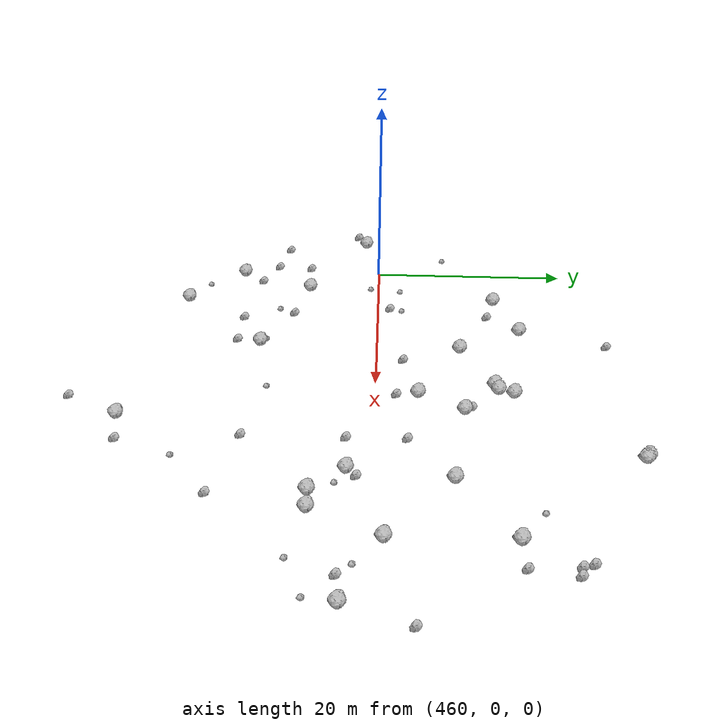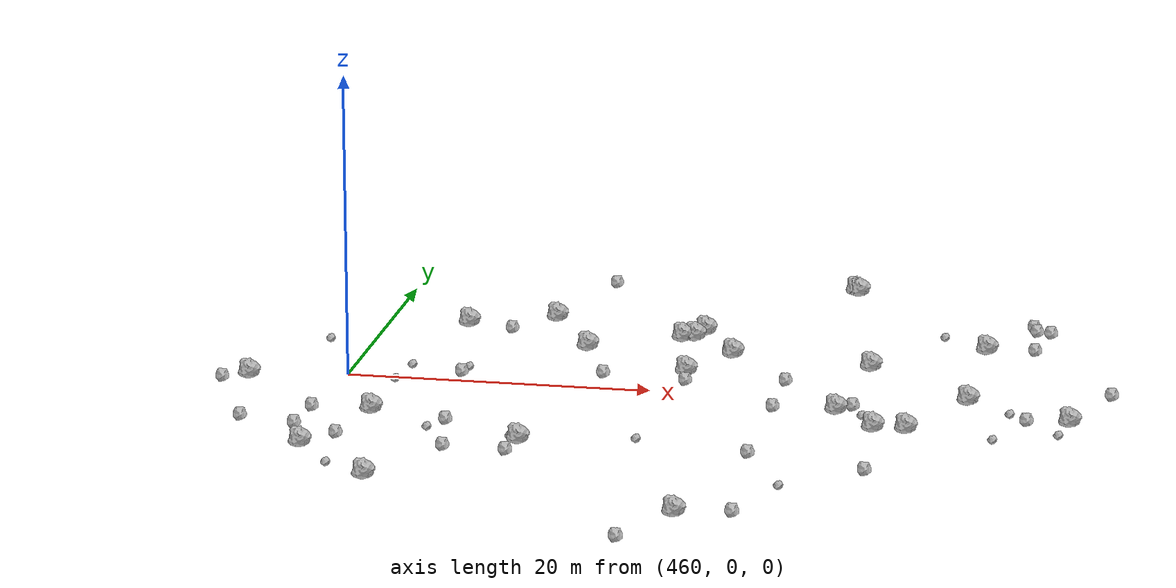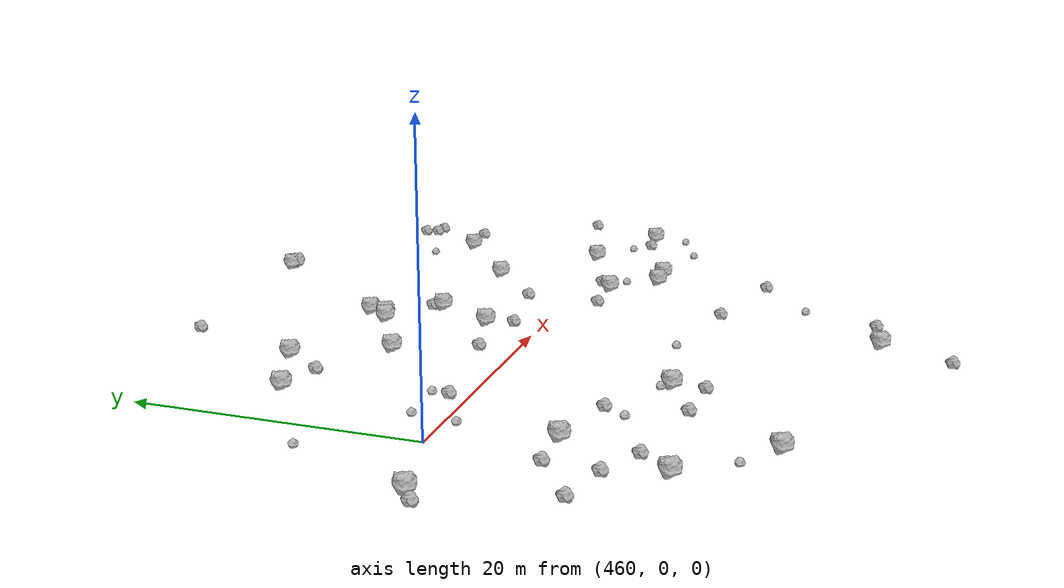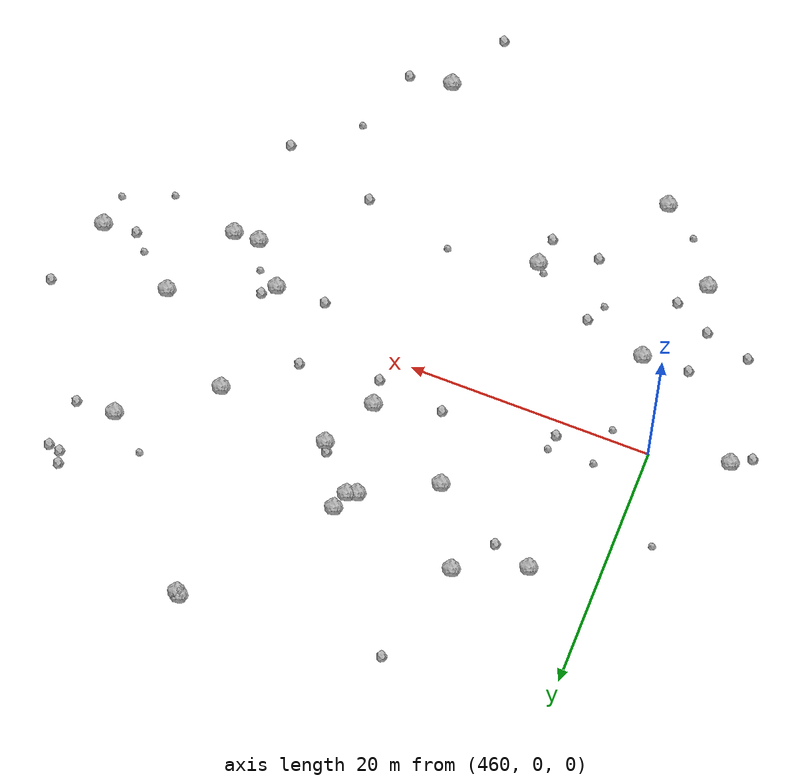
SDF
<sdf version="1.6">
 <world name="default">
  <include><uri>model://sun</uri></include>
  <model name="rock1_12_4">
   <include><uri>model://rock1</uri><pose>485.9240337818604 -24.08541608490794 0.5 0 0 0</pose></include>
  </model>
  <model name="rock1_12_5">
   <include><uri>model://rock1</uri><pose>492.5232867761239 -2.3693154261668994 0.5 0 0 0</pose></include>
  </model>
  <model name="rock1_12_6">
   <include><uri>model://rock1</uri><pose>460.50093596552813 -14.976972428291992 0.5 0 0 0</pose></include>
  </model>
  <model name="rock1_12_7">
   <include><uri>model://rock1</uri><pose>481.6736355442287 4.094220833608482 0.5 0 0 0</pose></include>
  </model>
  <model name="rock1_12_8">
   <include><uri>model://rock1</uri><pose>470.9926310959195 14.635351156385177 0.5 0 0 0</pose></include>
  </model>
  <model name="rock1_12_9">
   <include><uri>model://rock1</uri><pose>465.4203817960267 12.333565742540394 0.5 0 0 0</pose></include>
  </model>
  <model name="rock1_12_10">
   <include><uri>model://rock1</uri><pose>489.92608253821214 24.377236759146435 0.5 0 0 0</pose></include>
  </model>
  <model name="rock1_12_11">
   <include><uri>model://rock1</uri><pose>480.1273004074174 11.511158606561501 0.5 0 0 0</pose></include>
  </model>
  <model name="rock1_12_12">
   <include><uri>model://rock1</uri><pose>465.88671423566655 -20.445957352755812 0.5 0 0 0</pose></include>
  </model>
  <model name="rock1_12_13">
   <include><uri>model://rock1</uri><pose>473.7961473559639 -11.896277543266663 0.5 0 0 0</pose></include>
  </model>
  <model name="rock1_12_14">
   <include><uri>model://rock1</uri><pose>480.9083989647629 11.830648146171512 0.5 0 0 0</pose></include>
  </model>
  <model name="rock1_12_15">
   <include><uri>model://rock1</uri><pose>453.75803496346947 -1.5433180498371968 0.5 0 0 0</pose></include>
  </model>
  <model name="rock1_12_16">
   <include><uri>model://rock1</uri><pose>507.48724385498866 -2.375209314108151 0.5 0 0 0</pose></include>
  </model>
  <model name="rock1_12_17">
   <include><uri>model://rock1</uri><pose>481.3979170888375 13.275965143360473 0.5 0 0 0</pose></include>
  </model>
  <model name="rock1_12_18">
   <include><uri>model://rock1</uri><pose>500.43443005361513 12.20819740648053 0.5 0 0 0</pose></include>
  </model>
  <model name="rock1_12_19">
   <include><uri>model://rock1</uri><pose>493.4193216673143 7.15895119016173 0.5 0 0 0</pose></include>
  </model>
  <model name="rock1_12_20">
   <include><uri>model://rock1</uri><pose>490.1756401221764 24.170489697776077 0.5 0 0 0</pose></include>
  </model>
  <model name="rock1_12_21">
   <include><uri>model://rock1</uri><pose>495.35171659082766 -5.582595102751814 0.5 0 0 0</pose></include>
  </model>
  <model name="rock1_12_22">
   <include><uri>model://rock1</uri><pose>497.4454947561967 -5.506799928250857 0.5 0 0 0</pose></include>
  </model>
  <model name="rock1_12_23">
   <include><uri>model://rock1</uri><pose>463.31186546678 -7.477866482956475 0.5 0 0 0</pose></include>
  </model>
  <model name="rock1_12_24">
   <include><uri>model://rock1</uri><pose>484.0346876519025 8.443943281641857 0.5 0 0 0</pose></include>
  </model>
  <model name="rock1_12_25">
   <include><uri>model://rock1</uri><pose>500.57548268792186 1.0297244422627578 0.5 0 0 0</pose></include>
  </model>
  <model name="rock1_12_26">
   <include><uri>model://rock1</uri><pose>474.29042319677285 8.381863747912014 0.5 0 0 0</pose></include>
  </model>
  <model name="rock2_12_0">
   <include><uri>model://rock2</uri><pose>502.91005356057997 17.73124374726997 0.3 0 0 0</pose></include>
  </model>
  <model name="rock2_12_1">
   <include><uri>model://rock2</uri><pose>483.3273847493682 -29.189337540900347 0.3 0 0 0</pose></include>
  </model>
  <model name="rock2_12_2">
   <include><uri>model://rock2</uri><pose>488.4171581853629 -12.129593007176634 0.3 0 0 0</pose></include>
  </model>
  <model name="rock2_12_3">
   <include><uri>model://rock2</uri><pose>481.9579838519245 2.0218482403903977 0.3 0 0 0</pose></include>
  </model>
  <model name="rock2_12_4">
   <include><uri>model://rock2</uri><pose>493.4500553661547 -1.439365012844931 0.3 0 0 0</pose></include>
  </model>
  <model name="rock2_12_5">
   <include><uri>model://rock2</uri><pose>509.533251531157 3.5884986994120496 0.3 0 0 0</pose></include>
  </model>
  <model name="rock2_12_6">
   <include><uri>model://rock2</uri><pose>504.73686086750206 -2.648373695925031 0.3 0 0 0</pose></include>
  </model>
  <model name="rock2_12_7">
   <include><uri>model://rock2</uri><pose>452.196401241258 -2.4871704514811235 0.3 0 0 0</pose></include>
  </model>
  <model name="rock2_12_8">
   <include><uri>model://rock2</uri><pose>503.5780726262094 12.415180711071272 0.3 0 0 0</pose></include>
  </model>
  <model name="rock2_12_9">
   <include><uri>model://rock2</uri><pose>483.6370441398114 9.153492292195033 0.3 0 0 0</pose></include>
  </model>
  <model name="rock2_12_10">
   <include><uri>model://rock2</uri><pose>467.2996983386718 1.2957732617758353 0.3 0 0 0</pose></include>
  </model>
  <model name="rock2_12_11">
   <include><uri>model://rock2</uri><pose>468.53791321645224 11.466217240326259 0.3 0 0 0</pose></include>
  </model>
  <model name="rock2_12_12">
   <include><uri>model://rock2</uri><pose>473.4611311810501 -14.243700576000368 0.3 0 0 0</pose></include>
  </model>
  <model name="rock2_12_13">
   <include><uri>model://rock2</uri><pose>462.2583876867448 -12.765962376733096 0.3 0 0 0</pose></include>
  </model>
  <model name="rock2_12_14">
   <include><uri>model://rock2</uri><pose>496.0515781060045 -14.233582903262542 0.3 0 0 0</pose></include>
  </model>
  <model name="rock2_12_15">
   <include><uri>model://rock2</uri><pose>488.4310271040805 -2.5233241350688687 0.3 0 0 0</pose></include>
  </model>
  <model name="rock2_12_16">
   <include><uri>model://rock2</uri><pose>455.4155195226428 -10.297077997263752 0.3 0 0 0</pose></include>
  </model>
  <model name="rock2_12_17">
   <include><uri>model://rock2</uri><pose>476.4106023018783 2.6682667154111144 0.3 0 0 0</pose></include>
  </model>
  <model name="rock2_12_18">
   <include><uri>model://rock2</uri><pose>468.4455481914335 -8.802648968093646 0.3 0 0 0</pose></include>
  </model>
  <model name="rock2_12_19">
   <include><uri>model://rock2</uri><pose>469.4140651455318 -14.0346326710369 0.3 0 0 0</pose></include>
  </model>
  <model name="rock2_12_20">
   <include><uri>model://rock2</uri><pose>459.1809310316256 -11.224029520981823 0.3 0 0 0</pose></include>
  </model>
  <model name="rock2_12_21">
   <include><uri>model://rock2</uri><pose>473.43259705851403 23.228851195526076 0.3 0 0 0</pose></include>
  </model>
  <model name="rock2_12_22">
   <include><uri>model://rock2</uri><pose>459.4418966671263 -7.610718384705077 0.3 0 0 0</pose></include>
  </model>
  <model name="rock2_12_23">
   <include><uri>model://rock2</uri><pose>503.22226172498836 16.746433980340896 0.3 0 0 0</pose></include>
  </model>
  <model name="rock2_12_24">
   <include><uri>model://rock2</uri><pose>504.1801409435142 16.543932050883065 0.3 0 0 0</pose></include>
  </model>
  <model name="rock2_12_25">
   <include><uri>model://rock2</uri><pose>489.3607696604182 -23.466904432885972 0.3 0 0 0</pose></include>
  </model>
  <model name="rock2_12_26">
   <include><uri>model://rock2</uri><pose>488.38435674902763 3.0628091809070384 0.3 0 0 0</pose></include>
  </model>
  <model name="rock3_12_0">
   <include><uri>model://rock3</uri><pose>507.02065372177356 -5.197400193039542 0.2 0 0 0</pose></include>
  </model>
  <model name="rock3_12_1">
   <include><uri>model://rock3</uri><pose>463.30002088390404 -0.8373278904666002 0.2 0 0 0</pose></include>
  </model>
  <model name="rock3_12_2">
   <include><uri>model://rock3</uri><pose>503.5100523373258 -1.410846533458411 0.2 0 0 0</pose></include>
  </model>
  <model name="rock3_12_3">
   <include><uri>model://rock3</uri><pose>497.29540913659196 14.52011891560749 0.2 0 0 0</pose></include>
  </model>
  <model name="rock3_12_4">
   <include><uri>model://rock3</uri><pose>457.06241001656105 7.112620075847417 0.2 0 0 0</pose></include>
  </model>
  <model name="rock3_12_5">
   <include><uri>model://rock3</uri><pose>503.04915226351494 -6.832208553719333 0.2 0 0 0</pose></include>
  </model>
  <model name="rock3_12_6">
   <include><uri>model://rock3</uri><pose>494.2605109365054 -3.3089960092724198 0.2 0 0 0</pose></include>
  </model>
  <model name="rock3_12_7">
   <include><uri>model://rock3</uri><pose>467.49050773775076 2.518132449652292 0.2 0 0 0</pose></include>
  </model>
  <model name="rock3_12_8">
   <include><uri>model://rock3</uri><pose>467.5563233903495 -10.409701466895957 0.2 0 0 0</pose></include>
  </model>
  <model name="rock3_12_9">
   <include><uri>model://rock3</uri><pose>481.01472181634864 -10.523671724427256 0.2 0 0 0</pose></include>
  </model>
  <model name="rock3_12_10">
   <include><uri>model://rock3</uri><pose>491.28036184801357 -18.062411018469035 0.2 0 0 0</pose></include>
  </model>
  <model name="rock3_12_11">
   <include><uri>model://rock3</uri><pose>463.72943374142835 2.351819309949036 0.2 0 0 0</pose></include>
  </model>
  <model name="rock3_12_12">
   <include><uri>model://rock3</uri><pose>473.10938057894884 -11.330323518777693 0.2 0 0 0</pose></include>
  </model>
  <model name="rock3_12_13">
   <include><uri>model://rock3</uri><pose>462.9735950263271 -18.525567598005516 0.2 0 0 0</pose></include>
  </model>
 </world>
</sdf>
